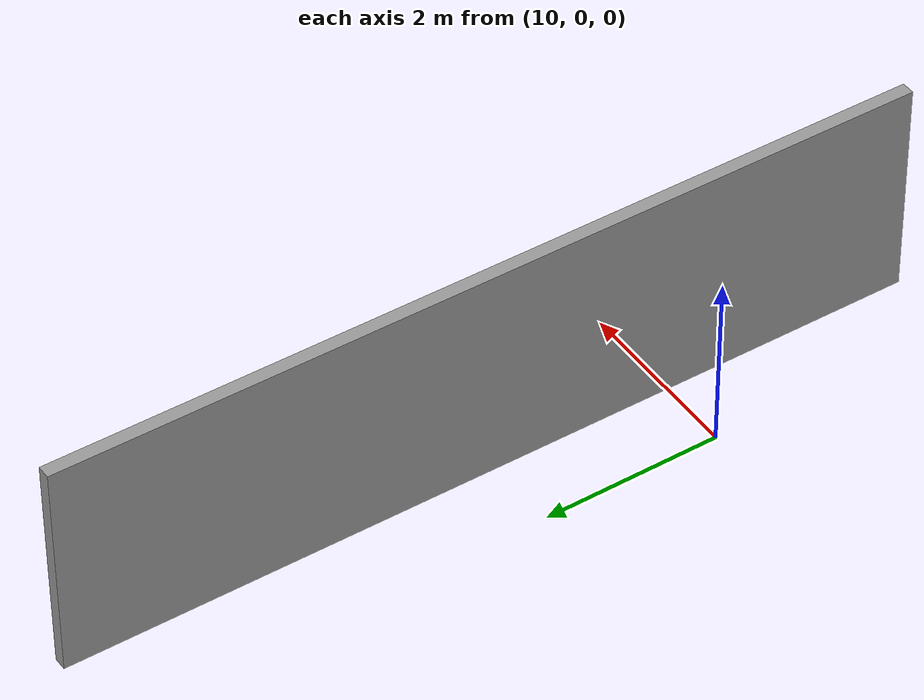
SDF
<?xml version='1.0'?>
<sdf version='1.6'>
  <model name='t4'>
    <pose frame=''>10.9135 2.00392 0 0 -0 0</pose>
    <link name='Wall_12'>
      <collision name='Wall_12_Collision'>
        <geometry>
          <box>
            <size>9.75 0.15 2.5</size>
          </box>
        </geometry>
        <pose frame=''>0 0 1.25 0 -0 0</pose>
      </collision>
      <visual name='Wall_12_Visual'>
        <pose frame=''>0 0 1.25 0 -0 0</pose>
        <geometry>
          <box>
            <size>9.75 0.15 2.5</size>
          </box>
        </geometry>
        <material>
          <script>
            <uri>file://media/materials/scripts/gazebo.material</uri>
            <name>Gazebo/Grey</name>
          </script>
          <ambient>1 1 1 1</ambient>
        </material>
        <meta>
          <layer>0</layer>
        </meta>
      </visual>
      <pose frame=''>0 0 0 0 -0 -1.5708</pose>
    </link>
    <static>1</static>
  </model>
</sdf>
